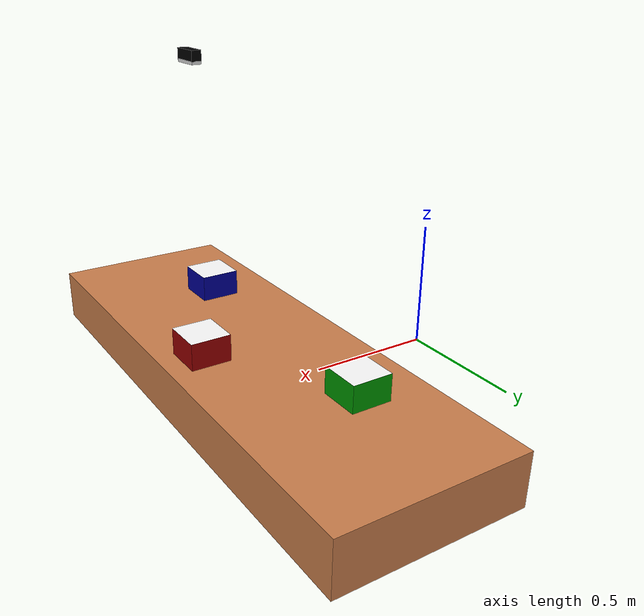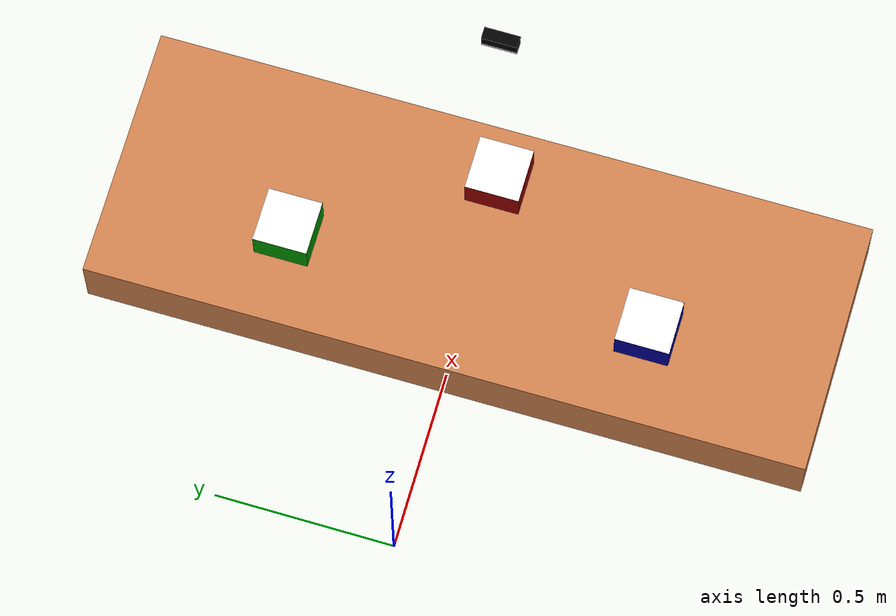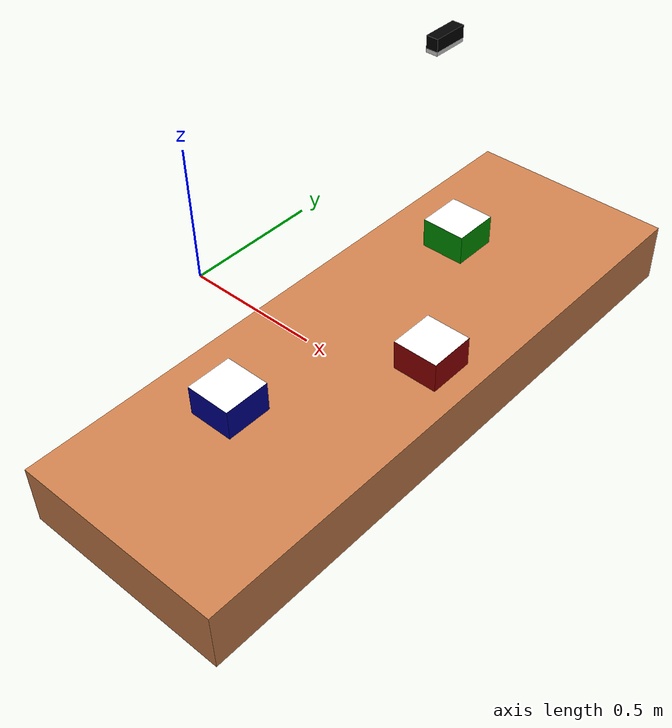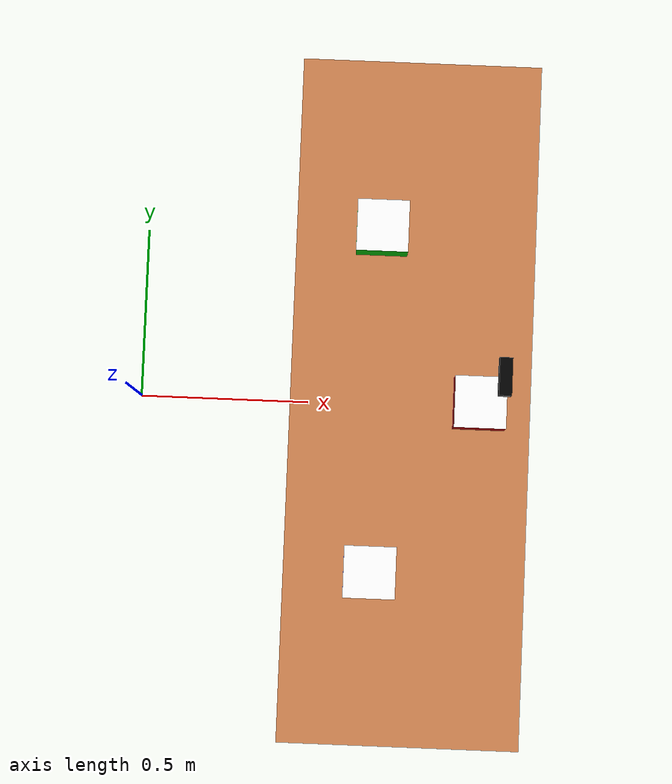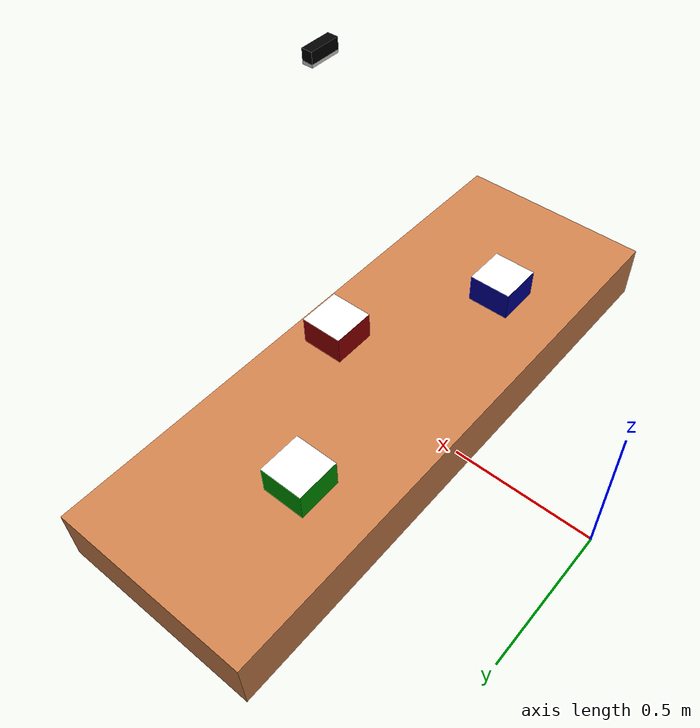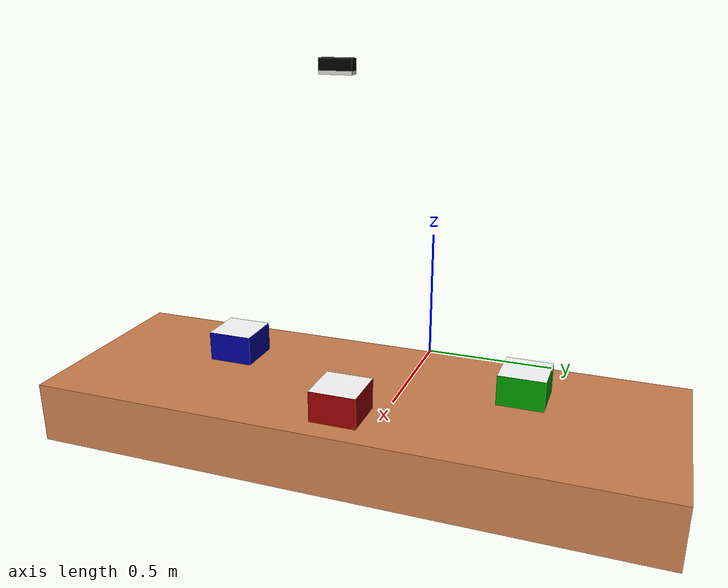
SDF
<?xml version="1.0" ?>
<sdf version="1.6">
  <world name="visual_servoing">
    <physics name="1ms" type="ignored">
      <max_step_size>0.001</max_step_size>
      <real_time_factor>1.0</real_time_factor>
    </physics>
    <plugin
      filename="ignition-gazebo-physics-system"
      name="gz::sim::systems::Physics">
    </plugin>
    <plugin
      filename="ignition-gazebo-sensors-system"
      name="gz::sim::systems::Sensors">
      <render_engine>ogre2</render_engine>
    </plugin>
    <plugin
      filename="ignition-gazebo-user-commands-system"
      name="ignition::gazebo::systems::UserCommands">
    </plugin>
    <plugin
      filename="ignition-gazebo-scene-broadcaster-system"
      name="gz::sim::systems::SceneBroadcaster">
    </plugin>

    <gui fullscreen="0">

      <!-- 3D scene -->
      <plugin filename="MinimalScene" name="3D View">
        <ignition-gui>
          <title>3D View</title>
          <property type="bool" key="showTitleBar">false</property>
          <property type="string" key="state">docked</property>
        </ignition-gui>

        <engine>ogre2</engine>
        <scene>scene</scene>
        <ambient_light>0.4 0.4 0.4</ambient_light>
        <background_color>0.8 0.8 0.8</background_color>
        <camera_pose>-6 0 6 0 0.5 0</camera_pose>
      </plugin>

      <!-- Plugins that add functionality to the scene -->
      <plugin filename="EntityContextMenuPlugin" name="Entity context menu">
        <ignition-gui>
          <property key="state" type="string">floating</property>
          <property key="width" type="double">5</property>
          <property key="height" type="double">5</property>
          <property key="showTitleBar" type="bool">false</property>
        </ignition-gui>
      </plugin>
      <plugin filename="GzSceneManager" name="Scene Manager">
        <ignition-gui>
          <property key="resizable" type="bool">false</property>
          <property key="width" type="double">5</property>
          <property key="height" type="double">5</property>
          <property key="state" type="string">floating</property>
          <property key="showTitleBar" type="bool">false</property>
        </ignition-gui>
      </plugin>
      <plugin filename="InteractiveViewControl" name="Interactive view control">
        <ignition-gui>
          <property key="resizable" type="bool">false</property>
          <property key="width" type="double">5</property>
          <property key="height" type="double">5</property>
          <property key="state" type="string">floating</property>
          <property key="showTitleBar" type="bool">false</property>
        </ignition-gui>
      </plugin>
      <plugin filename="CameraTracking" name="Camera Tracking">
        <ignition-gui>
          <property key="resizable" type="bool">false</property>
          <property key="width" type="double">5</property>
          <property key="height" type="double">5</property>
          <property key="state" type="string">floating</property>
          <property key="showTitleBar" type="bool">false</property>
        </ignition-gui>
      </plugin>
      <!-- World control -->
      <plugin filename="WorldControl" name="World control">
        <ignition-gui>
          <title>World control</title>
          <property type="bool" key="showTitleBar">false</property>
          <property type="bool" key="resizable">false</property>
          <property type="double" key="height">72</property>
          <property type="double" key="width">121</property>
          <property type="double" key="z">1</property>

          <property type="string" key="state">floating</property>
          <anchors target="3D View">
            <line own="left" target="left"/>
            <line own="bottom" target="bottom"/>
          </anchors>
        </ignition-gui>

        <play_pause>true</play_pause>
        <step>true</step>
        <start_paused>true</start_paused>
        <use_event>true</use_event>

      </plugin>

      <!-- World statistics -->
      <plugin filename="WorldStats" name="World stats">
        <ignition-gui>
          <title>World stats</title>
          <property type="bool" key="showTitleBar">false</property>
          <property type="bool" key="resizable">false</property>
          <property type="double" key="height">110</property>
          <property type="double" key="width">290</property>
          <property type="double" key="z">1</property>

          <property type="string" key="state">floating</property>
          <anchors target="3D View">
            <line own="right" target="right"/>
            <line own="bottom" target="bottom"/>
          </anchors>
        </ignition-gui>

        <sim_time>true</sim_time>
        <real_time>true</real_time>
        <real_time_factor>true</real_time_factor>
        <iterations>true</iterations>
      </plugin>

      <!-- Inspector -->
      <plugin filename="ComponentInspector" name="Component inspector">
        <ignition-gui>
          <property type="string" key="state">docked</property>
        </ignition-gui>
      </plugin>

      <!-- Entity tree -->
      <plugin filename="EntityTree" name="Entity tree">
        <ignition-gui>
          <property type="string" key="state">docked</property>
        </ignition-gui>
      </plugin>

      <plugin filename="ImageDisplay" name="Image Display 3">
        <ignition-gui>
          <title>RGBD: image</title>
          <property key="state" type="string">floating</property>
          <property type="double" key="width">350</property>
          <property type="double" key="height">315</property>
          <property type="double" key="y">320</property>

        </ignition-gui>
        <topic>rgbd_camera/image</topic>
        <topic_picker>false</topic_picker>
      </plugin>

      <plugin filename="ImageDisplay" name="Image Display 3">
        <ignition-gui>
          <title>RGBD: depth</title>
          <property key="state" type="string">docked</property>
        </ignition-gui>
        <topic>rgbd_camera/depth_image</topic>
        <topic_picker>false</topic_picker>
      </plugin>

      <plugin filename="MarkerManager" name="Marker manager">
        <ignition-gui>
          <property key="resizable" type="bool">false</property>
          <property key="width" type="double">5</property>
          <property key="height" type="double">5</property>
          <property key="state" type="string">floating</property>
          <property key="showTitleBar" type="bool">false</property>
        </ignition-gui>
      </plugin>

      <plugin filename="SelectEntities" name="Select Entities">
        <ignition-gui>
          <anchors target="Select entities">
            <line own="right" target="right"/>
            <line own="top" target="top"/>
          </anchors>
          <property key="resizable" type="bool">false</property>
          <property key="width" type="double">5</property>
          <property key="height" type="double">5</property>
          <property key="state" type="string">floating</property>
          <property key="showTitleBar" type="bool">false</property>
        </ignition-gui>
      </plugin>

      <plugin filename="VisualizationCapabilities" name="Visualization Capabilities">
        <ignition-gui>
          <property key="resizable" type="bool">false</property>
          <property key="width" type="double">5</property>
          <property key="height" type="double">5</property>
          <property key="state" type="string">floating</property>
          <property key="showTitleBar" type="bool">false</property>
        </ignition-gui>
      </plugin>

      <plugin filename="Spawn" name="Spawn Entities">
        <ignition-gui>
          <anchors target="Select entities">
            <line own="right" target="right"/>
            <line own="top" target="top"/>
          </anchors>
          <property key="resizable" type="bool">false</property>
          <property key="width" type="double">5</property>
          <property key="height" type="double">5</property>
          <property key="state" type="string">floating</property>
          <property key="showTitleBar" type="bool">false</property>
        </ignition-gui>
      </plugin>

      <!-- Insert simple shapes -->
      <plugin filename="Shapes" name="Shapes">
        <ignition-gui>
          <property key="resizable" type="bool">false</property>
          <property key="x" type="double">0</property>
          <property key="y" type="double">0</property>
          <property key="width" type="double">250</property>
          <property key="height" type="double">50</property>
          <property key="state" type="string">floating</property>
          <property key="showTitleBar" type="bool">false</property>
          <property key="cardBackground" type="string">#666666</property>
        </ignition-gui>
      </plugin>

      <!-- Insert lights -->
      <plugin filename="Lights" name="Lights">
        <ignition-gui>
          <property key="resizable" type="bool">false</property>
          <property key="x" type="double">250</property>
          <property key="y" type="double">0</property>
          <property key="width" type="double">150</property>
          <property key="height" type="double">50</property>
          <property key="state" type="string">floating</property>
          <property key="showTitleBar" type="bool">false</property>
          <property key="cardBackground" type="string">#666666</property>
        </ignition-gui>
      </plugin>

      <!-- Translate / rotate -->
      <plugin filename="TransformControl" name="Transform control">
        <ignition-gui>
          <property key="resizable" type="bool">false</property>
          <property key="x" type="double">0</property>
          <property key="y" type="double">50</property>
          <property key="width" type="double">250</property>
          <property key="height" type="double">50</property>
          <property key="state" type="string">floating</property>
          <property key="showTitleBar" type="bool">false</property>
          <property key="cardBackground" type="string">#777777</property>
        </ignition-gui>
        <legacy>false</legacy>
      </plugin>

      <!-- Screenshot -->
      <plugin filename="Screenshot" name="Screenshot">
        <ignition-gui>
          <property key="resizable" type="bool">false</property>
          <property key="x" type="double">250</property>
          <property key="y" type="double">50</property>
          <property key="width" type="double">50</property>
          <property key="height" type="double">50</property>
          <property key="state" type="string">floating</property>
          <property key="showTitleBar" type="bool">false</property>
          <property key="cardBackground" type="string">#777777</property>
        </ignition-gui>
      </plugin>

      <!-- Video recorder -->
      <plugin filename="VideoRecorder" name="VideoRecorder">
        <ignition-gui>
          <property key="resizable" type="bool">false</property>
          <property key="x" type="double">300</property>
          <property key="y" type="double">50</property>
          <property key="width" type="double">50</property>
          <property key="height" type="double">50</property>
          <property key="state" type="string">floating</property>
          <property key="showTitleBar" type="bool">false</property>
          <property key="cardBackground" type="string">#777777</property>
        </ignition-gui>
        <record_video>
          <use_sim_time>true</use_sim_time>
          <lockstep>true</lockstep>
          <bitrate>4000000</bitrate>
        </record_video>
        <legacy>false</legacy>
      </plugin>

      <plugin filename="ViewAngle" name="View angle">
        <ignition-gui>
          <property type="string" key="state">docked_collapsed</property>
        </ignition-gui>
        <legacy>false</legacy>
      </plugin>

    </gui>

    <light type="directional" name="sun">
      <cast_shadows>true</cast_shadows>
      <pose>0 0 10 0 0 0</pose>
      <diffuse>0.8 0.8 0.8 1</diffuse>
      <specular>0.2 0.2 0.2 1</specular>
      <attenuation>
        <range>1000</range>
        <constant>0.9</constant>
        <linear>0.01</linear>
        <quadratic>0.001</quadratic>
      </attenuation>
      <direction>-0.5 0.1 -0.9</direction>
    </light>

    <model name="rgbd_camera">

      <joint name="joint_world" type="fixed">
        <parent>world</parent>
        <child>rgbd_camera_lens</child>
      </joint>

      <link name="rgbd_camera_lens">
        <pose>1.0 0 1.2 0 1.5708 0</pose>

        <inertial>
          <mass>0.05</mass>
          <inertia>
          </inertia>
        </inertial>

        <collision name="collision">
          <geometry>
            <box>
              <size>0.01 0.0936 0.0318</size>
            </box>
          </geometry>
        </collision>
        <visual name="visual">
          <geometry>
            <box>
              <size>0.01 0.0936 0.0318</size>
            </box>
          </geometry>
          <material>
            <ambient>0.85 0.85 0.85 1</ambient>
            <diffuse>0.85 0.85 0.85 1</diffuse>
            <specular>0.95 0.95 0.95 1</specular>
          </material>
        </visual>
        <sensor name="rgbd_camera" type="rgbd_camera">
          <camera>
            <horizontal_fov>1.9199</horizontal_fov>
            <image>
              <width>960</width>
              <height>600</height>
              <format>R8G8B8</format>
            </image>
            <clip>
              <near>0.01</near>
              <far>15</far>
            </clip>
            <depth_camera>
              <clip>
                <near>0.1</near>
                <far>8</far>
              </clip>
            </depth_camera>
          </camera>
          <always_on>1</always_on>
          <update_rate>60</update_rate>
          <visualize>true</visualize>
          <topic>rgbd_camera</topic>
          <enable_metrics>true</enable_metrics>
        </sensor>
      </link>

      <joint name="joint_camera" type="fixed">
        <parent>world</parent>
        <child>rgbd_camera_body</child>
      </joint>

      <link name="rgbd_camera_body">
        <pose>1.0 0 1.22 0 1.5708 0</pose>

        <inertial>
          <mass>0.101</mass>
        </inertial>

        <collision name="collision">
          <geometry>
            <box>
              <size>0.0324 0.0936 0.0318</size>
            </box>
          </geometry>
        </collision>

        <visual name="visual">
          <geometry>
            <box>
              <size>0.0324 0.0936 0.0318</size>
            </box>
          </geometry>
          <material>
            <ambient>0.0 0.0 0.0 1</ambient>
            <diffuse>0.0 0.0 0.0 1</diffuse>
            <specular>0.1 0.1 0.1 1</specular>
          </material>

        </visual>
      </link>
    </model>

    <!-- table -->
    <joint name="joint_table1" type="screw">
        <parent>world</parent>
        <child>table1</child>
    </joint>

    <model name="table1">
      <static>true</static>
      <pose>0.8 0 0.1 0 0 0</pose>
      <link name="table1_link">
        <inertial>
          <inertia>
            <ixx>1</ixx>
            <ixy>0</ixy>
            <ixz>0</ixz>
            <iyy>1</iyy>
            <iyz>0</iyz>
            <izz>1</izz>
          </inertia>
          <mass>1.0</mass>
        </inertial>
        <collision name="table1_collision">
          <geometry>
            <box>
              <size>0.7 2.0 0.2</size>
            </box>
          </geometry>
        </collision>
        <visual name="table1_visual">
          <geometry>
            <box>
              <size>0.7 2.0 0.2</size>
            </box>
          </geometry>
          <material>
            <ambient>0.6 0.4 0.2 1</ambient>
            <diffuse>0.8 0.5 0.3 1</diffuse>
            <specular>0.1 0.1 0.1 1</specular>
          </material>

        </visual>
      </link>
    </model>

    <!--box1-->
    <joint name="joint_box1" type="screw">
        <parent>world</parent>
        <child>markerbox1</child>
    </joint>

    <include>
        <pose>1.0 0 0.25 0 0 0</pose>
        <name>markerbox1</name>
        <uri>model://description/markerbox1.sdf</uri>

    </include>

    <!--box2-->
    <joint name="joint_box2" type="screw">
        <parent>world</parent>
        <child>markerbox2</child>
    </joint>

    <include>
        <pose>0.7 0.5 0.25 0 0 0</pose>
        <name>markerbox2</name>
        <uri>model://description/markerbox2.sdf</uri>
    </include>

    <!--box3-->
    <joint name="joint_box3" type="screw">
        <parent>world</parent>
        <child>markerbox3</child>
    </joint>

    <include>
        <pose>0.7 -0.5 0.25 0 0 0</pose>
        <name>markerbox3</name>
        <uri>model://description/markerbox3.sdf</uri>
    </include>

  </world>
</sdf>

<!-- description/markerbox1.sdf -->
<sdf version="1.6">

  <model name="markerbox1">
    <link name="box1">
      <pose>0 0 0 0 0 0</pose>
      <inertial>
        <inertia>
          <ixx>1</ixx>
          <ixy>0</ixy>
          <ixz>0</ixz>
          <iyy>1</iyy>
          <iyz>0</iyz>
          <izz>1</izz>
        </inertia>
        <mass>1.0</mass>
      </inertial>
      <collision name="box1_collision">
        <geometry>
          <box>
            <size>0.15 0.15 0.1</size>
          </box>
        </geometry>
      </collision>
      <visual name="box1_visual">
        <geometry>
          <box>
            <size>0.15 0.15 0.1</size>
          </box>
        </geometry>
        <material>
          <ambient>0.1 0.0 0.0 1</ambient>
          <diffuse>0.6 0.0 0.0 1</diffuse>
          <specular>0.8 0.6 0.6 1</specular>
        </material>

      </visual>
    </link>

    <joint name="joint_plane1" type="fixed">
      <parent>box1</parent>
      <child>plane1</child>
    </joint>

    <link name="plane1">
      <pose>0 0 0.05 0 0 0</pose>
      <visual name="plane1_visual">
        <geometry>
          <plane>
            <normal>0 0 1</normal>
            <size>0.15 0.15</size>
          </plane>
        </geometry>
        <material>
          <ambient>1.0 1.0 1.0 1</ambient>
          <diffuse>1.0 1.0 1.0 1</diffuse>
          <specular>1.0 1.0 1.0 1</specular>
        </material>
      </visual>
    </link>

    <joint name="joint_markerbox1" type="fixed">
      <parent>plane1</parent>
      <child>marker1</child>
    </joint>

    <link name="marker1">
      <pose>0 0 0.05 0 0 0</pose>
      <visual name="marker1_visual">
        <geometry>
          <box>
            <size>0.115 0.115 0.0001</size>
          </box>
        </geometry>
        <material>
          <ambient>1.0 1.0 1.0 1</ambient>
          <diffuse>1.0 1.0 1.0 1</diffuse>
          <specular>0.0 0.0 0.0 1</specular>
          <pbr>
            <metal>
              <albedo_map>textures/4x4_1000-1_115.png</albedo_map>
              <roughness>1.0</roughness>
              <metalness>0.0</metalness>
            </metal>
          </pbr>
        </material>

      </visual>

      <collision name="collision1">
        <geometry>
          <box>
            <size>0.115 0.115 0.0001</size>
          </box>
        </geometry>
      </collision>
    </link>
  </model>

</sdf>

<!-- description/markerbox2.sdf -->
<sdf version="1.6">

  <model name="markerbox2">
    <link name="box2">
      <pose>0 0 0 0 0 0</pose>
      <inertial>
        <inertia>
          <ixx>1</ixx>
          <ixy>0</ixy>
          <ixz>0</ixz>
          <iyy>1</iyy>
          <iyz>0</iyz>
          <izz>1</izz>
        </inertia>
        <mass>1.0</mass>
      </inertial>
      <collision name="box2_collision">
        <geometry>
          <box>
            <size>0.15 0.15 0.1</size>
          </box>
        </geometry>
      </collision>
      <visual name="box2_visual">
        <geometry>
          <box>
            <size>0.15 0.15 0.1</size>
          </box>
        </geometry>
        <material>
          <ambient>0.0 0.1 0.0 1</ambient>
          <diffuse>0.0 0.6 0.0 1</diffuse>
          <specular>0.6 0.8 0.6 1</specular>
        </material>

      </visual>
    </link>

    <joint name="joint_plane2" type="fixed">
      <parent>box2</parent>
      <child>plane2</child>
    </joint>

    <link name="plane2">
      <pose>0 0 0.05 0 0 0</pose>
      <visual name="plane2_visual">
        <geometry>
          <plane>
            <normal>0 0 1</normal>
            <size>0.15 0.15</size>
          </plane>
        </geometry>
        <material>
          <ambient>1.0 1.0 1.0 1</ambient>
          <diffuse>1.0 1.0 1.0 1</diffuse>
          <specular>1.0 1.0 1.0 1</specular>
        </material>
      </visual>
    </link>

    <joint name="joint_markerbox2" type="fixed">
      <parent>plane2</parent>
      <child>marker2</child>
    </joint>

    <link name="marker2">
      <pose>0 0 0.05 0 0 0</pose>
      <visual name="marker2_visual">
        <geometry>
          <box>
            <size>0.115 0.115 0.0001</size>
          </box>
        </geometry>
        <material>
          <ambient>1.0 1.0 1.0 1</ambient>
          <diffuse>1.0 1.0 1.0 1</diffuse>
          <specular>0.0 0.0 0.0 1</specular>
          <pbr>
            <metal>
              <albedo_map>textures/4x4_1000-2_115.png</albedo_map>
              <roughness>1.0</roughness>
              <metalness>0.0</metalness>
            </metal>
          </pbr>
        </material>

      </visual>

      <collision name="collision2">
        <geometry>
          <box>
            <size>0.115 0.115 0.0001</size>
          </box>
        </geometry>
      </collision>
    </link>
  </model>

</sdf>

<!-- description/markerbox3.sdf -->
<sdf version="1.6">

  <model name="markerbox3">
    <link name="box3">
      <pose>0 0 0 0 0 0</pose>
      <inertial>
        <inertia>
          <ixx>1</ixx>
          <ixy>0</ixy>
          <ixz>0</ixz>
          <iyy>1</iyy>
          <iyz>0</iyz>
          <izz>1</izz>
        </inertia>
        <mass>1.0</mass>
      </inertial>
      <collision name="box3_collision">
        <geometry>
          <box>
            <size>0.15 0.15 0.1</size>
          </box>
        </geometry>
      </collision>
      <visual name="box3_visual">
        <geometry>
          <box>
            <size>0.15 0.15 0.1</size>
          </box>
        </geometry>
        <material>
          <ambient>0.0 0.0 0.1 1</ambient>
          <diffuse>0.0 0.0 0.6 1</diffuse>
          <specular>0.6 0.6 0.8 1</specular>
        </material>
      </visual>
    </link>

    <joint name="joint_plane3" type="fixed">
      <parent>box3</parent>
      <child>plane3</child>
    </joint>

    <link name="plane3">
      <pose>0 0 0.05 0 0 0</pose>
      <visual name="plane3_visual">
        <geometry>
          <plane>
            <normal>0 0 1</normal>
            <size>0.15 0.15</size>
          </plane>
        </geometry>
        <material>
          <ambient>1.0 1.0 1.0 1</ambient>
          <diffuse>1.0 1.0 1.0 1</diffuse>
          <specular>1.0 1.0 1.0 1</specular>
        </material>
      </visual>
    </link>

    <joint name="joint_markerbox3" type="fixed">
      <parent>plane3</parent>
      <child>marker3</child>
    </joint>

    <link name="marker3">
      <pose>0 0 0.05 0 0 0</pose>
      <visual name="marker3_visual">
        <geometry>
          <box>
            <size>0.115 0.115 0.0001</size>
          </box>
        </geometry>
        <material>
          <ambient>1.0 1.0 1.0 1</ambient>
          <diffuse>1.0 1.0 1.0 1</diffuse>
          <specular>0.0 0.0 0.0 1</specular>
          <pbr>
            <metal>
              <albedo_map>textures/4x4_1000-3_115.png</albedo_map>
              <roughness>1.0</roughness>
              <metalness>0.0</metalness>
            </metal>
          </pbr>
        </material>
      </visual>

      <collision name="collision3">
        <geometry>
          <box>
            <size>0.115 0.115 0.0001</size>
          </box>
        </geometry>
      </collision>
    </link>
  </model>

</sdf>
